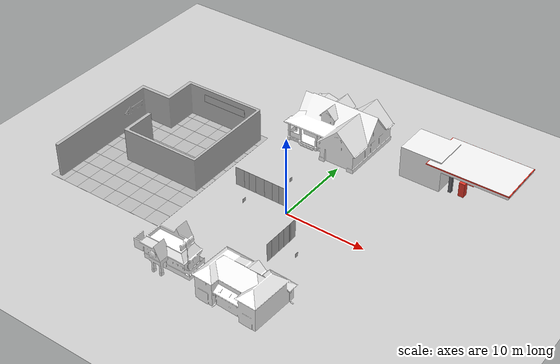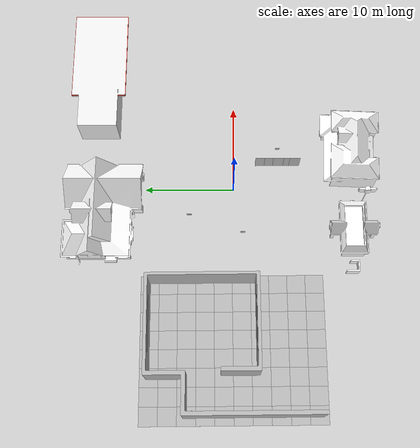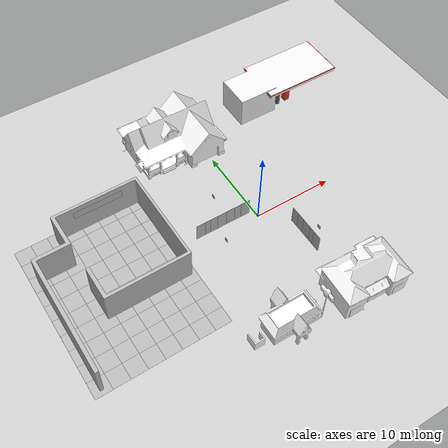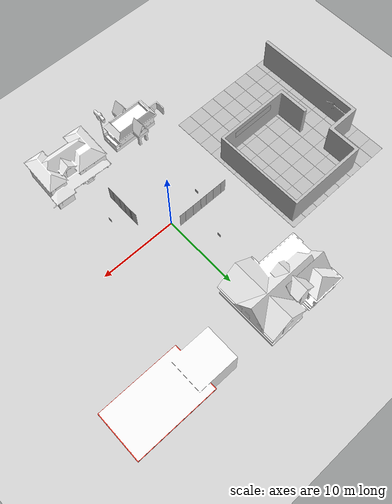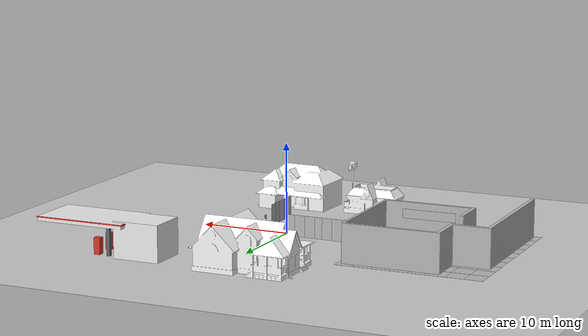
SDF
<sdf version="1.5">
 <world name="default">
  <spherical_coordinates>
   <latitude_deg>48.8789</latitude_deg>
   <longitude_deg>2.36778</longitude_deg>
   <surface_model>EARTH_WGS84</surface_model>
   <elevation>0</elevation>
   <heading_deg>0</heading_deg>
  </spherical_coordinates>
  <physics name="default_physics" default="0" type="ode">
   <real_time_update_rate>1000</real_time_update_rate>
   <max_step_size>0.001</max_step_size>
   <real_time_factor>1</real_time_factor>
   <max_contacts>20</max_contacts>
   <gravity>0 0 -9.81</gravity>
   <magnetic_field>0 2.1e-05 -4.3e-05</magnetic_field>
   <ode>
    <solver>
     <type>world</type>
     <min_step_size>0.0001</min_step_size>
     <iters>50</iters>
     <precon_iters>0</precon_iters>
     <sor>1.4</sor>
     <use_dynamic_moi_rescaling>1</use_dynamic_moi_rescaling>
    </solver>
    <constraints>
     <cfm>0</cfm>
     <erp>0.2</erp>
     <contact_max_correcting_vel>100</contact_max_correcting_vel>
     <contact_surface_layer>0.001</contact_surface_layer>
    </constraints>
   </ode>
  </physics>
  <atmosphere type="adiabatic">
   <temperature>298.15</temperature>
   <pressure>101325</pressure>
   <temperature_gradient>-0.0065</temperature_gradient>
  </atmosphere>
  <plugin name="fwman" filename="libsphinx_fwman.so">
   <spawn_point name="home"><pose>1 -1 0.1 0 0 0</pose></spawn_point>
   <drone name="bebop2" firmware="/home/santiago/Descargas/ardrone3-milos_pc.ext2.zip" hardware="milosboard">
    <machine_params low_gpu="1" with_front_cam="0" with_hd_battery="0" with_flir="0" flir_pos="tilted"/>
    <pose>home</pose>
    <interface>eth1</interface>
   </drone>
  </plugin>
  <light name="sun" type="directional">
   <pose>0 0 10 0 -0 0</pose>
   <diffuse>0.8 0.8 0.8 1</diffuse>
   <specular>0.2 0.2 0.2 1</specular>
   <attenuation>
    <range>1000</range>
    <constant>0.9</constant>
    <linear>0.01</linear>
    <quadratic>0.001</quadratic>
   </attenuation>
   <direction>-0.5 0.1 -0.9</direction>
  </light>
  <model name="ground_plane">
   <static>1</static>
   <link name="link">
    <collision name="collision">
     <geometry><plane><normal>0 0 1</normal><size>100 100</size></plane></geometry>
     <surface>
      <contact><collide_bitmask>65535</collide_bitmask></contact>
      <friction><ode><mu>100</mu><mu2>50</mu2></ode></friction>
     </surface>
    </collision>
    <visual name="visual">
     <cast_shadows>0</cast_shadows>
     <geometry><plane><normal>0 0 1</normal><size>100 100</size></plane></geometry>
     <material>
      <script><uri>file://media/materials/scripts/gazebo.material</uri><name>Gazebo/Grey</name></script>
     </material>
    </visual>
   </link>
  </model>
  <scene><ambient>0.4 0.4 0.4 1</ambient><background>0.7 0.7 0.7 1</background><shadows>0</shadows></scene>
  <model name="Gas Station">
   <static>1</static>
   <link name="link">
    <collision name="collision">
     <geometry><mesh><uri>model://gas_station/meshes/gas_station.dae</uri></mesh></geometry>
    </collision>
    <visual name="visual">
     <geometry><mesh><uri>model://gas_station/meshes/gas_station.dae</uri></mesh></geometry>
     <material>
      <script>
       <uri>model://gas_station/materials/scripts</uri>
       <uri>model://gas_station/materials/textures</uri>
       <name>GasStation/Diffuse</name>
      </script>
      <shader type="normal_map_object_space"><normal_map>GasStation_Normal.png</normal_map></shader>
     </material>
    </visual>
   </link>
   <pose>12.7227 15.3433 0 0 -0 0</pose>
  </model>
  <model name="House 1">
   <static>1</static>
   <link name="link">
    <collision name="collision">
     <geometry><mesh><uri>model://house_1/meshes/house_1.dae</uri></mesh></geometry>
    </collision>
    <visual name="visual">
     <geometry><mesh><uri>model://house_1/meshes/house_1.dae</uri></mesh></geometry>
     <material>
      <script>
       <uri>model://house_1/materials/scripts</uri>
       <uri>model://house_1/materials/textures</uri>
       <name>House_1/Diffuse</name>
      </script>
      <shader type="normal_map_object_space"><normal_map>House_1_Normal.png</normal_map></shader>
     </material>
    </visual>
   </link>
   <pose>-2.9954 14.6952 0 0 -0 0</pose>
  </model>
  <model name="House 2">
   <static>1</static>
   <link name="link">
    <collision name="collision">
     <geometry><mesh><uri>model://house_2/meshes/house_2.dae</uri></mesh></geometry>
    </collision>
    <visual name="visual">
     <geometry><mesh><uri>model://house_2/meshes/house_2.dae</uri></mesh></geometry>
     <material>
      <script>
       <uri>model://house_2/materials/scripts</uri>
       <uri>model://house_2/materials/textures</uri>
       <uri>model://house_1/materials/textures</uri>
       <name>House_2/Diffuse</name>
      </script>
      <shader type="normal_map_object_space">
       <normal_map>model://house_1/materials/textures/House_1_Normal.png</normal_map>
      </shader>
     </material>
    </visual>
   </link>
   <pose>3.72861 -13.5092 0 0 0 -0.041899</pose>
  </model>
  <model name="Starting Pen">
   <static>1</static>
   <link name="link">
    <collision name="wall_01">
     <pose>-0 0 2.14 0 -0 0</pose>
     <geometry><box><size>12.15 0.31 4.28</size></box></geometry>
    </collision>
    <collision name="wall_02">
     <pose>-5.28 14.3205 2.14 0 -0 0</pose>
     <geometry><box><size>14.8 0.46 4.28</size></box></geometry>
    </collision>
    <collision name="wall_03">
     <pose>-5.91 5 2.14 0 -0 0</pose>
     <geometry><box><size>0.385 10.3 4.28</size></box></geometry>
    </collision>
    <collision name="wall_04">
     <pose>5.91 5.161 2.14 0 -0 0</pose>
     <geometry><box><size>0.385 10.66 4.28</size></box></geometry>
    </collision>
    <collision name="wall_05">
     <pose>3.9 10.285 2.14 0 -0 0</pose>
     <geometry><box><size>4.38 0.45 4.28</size></box></geometry>
    </collision>
    <collision name="wall_06">
     <pose>-4 9.95 2.14 0 -0 0</pose>
     <geometry><box><size>4.25 0.45 4.28</size></box></geometry>
    </collision>
    <collision name="wall_07">
     <pose>1.94 12.3 2.14 0 -0 0</pose>
     <geometry><box><size>0.45 4.5 4.28</size></box></geometry>
    </collision>
    <collision name="wall_arrow">
     <pose>-0.232 14.03 2.46 0 -0 0</pose>
     <geometry><box><size>3.33 0.12 1.16</size></box></geometry>
    </collision>
    <collision name="collision_floor">
     <pose>-3.21 7.355 0 0 -0 0</pose>
     <geometry><box><size>20 16 0.01</size></box></geometry>
     <surface><friction><ode><mu>100</mu><mu2>50</mu2></ode></friction></surface>
    </collision>
    <visual name="visual_osrf">
     <pose>-5.74 4.99 3 0 -0 0</pose>
     <geometry><box><size>0.01 6 1</size></box></geometry>
     <material>
      <script>
       <uri>model://starting_pen/materials/scripts</uri>
       <uri>model://starting_pen/materials/textures</uri>
       <name>StartingPen/OSRF</name>
      </script>
     </material>
    </visual>
    <visual name="visual_osrf_2">
     <pose>5.74 4.99 3 0 -0 0</pose>
     <geometry><box><size>0.01 6 1</size></box></geometry>
     <material>
      <script>
       <uri>model://starting_pen/materials/scripts</uri>
       <uri>model://starting_pen/materials/textures</uri>
       <name>StartingPen/OSRF</name>
      </script>
     </material>
    </visual>
    <visual name="visual">
     <geometry><mesh><uri>model://starting_pen/meshes/starting_pen.dae</uri></mesh></geometry>
    </visual>
    <visual name="visual_floor_0">
     <pose>-12.21 0.35 0 0 -0 0</pose>
     <geometry><box><size>2 2 0.01</size></box></geometry>
     <material>
      <script>
       <uri>model://starting_pen/materials/scripts</uri>
       <uri>model://starting_pen/materials/textures</uri>
       <name>StartingPen/Floor</name>
      </script>
     </material>
    </visual>
    <visual name="visual_floor_1">
     <pose>-10.21 0.35 0 0 -0 0</pose>
     <geometry><box><size>2 2 0.01</size></box></geometry>
     <material>
      <script>
       <uri>model://starting_pen/materials/scripts</uri>
       <uri>model://starting_pen/materials/textures</uri>
       <name>StartingPen/Floor</name>
      </script>
     </material>
    </visual>
    <visual name="visual_floor_2">
     <pose>-8.21 0.35 0 0 -0 0</pose>
     <geometry><box><size>2 2 0.01</size></box></geometry>
     <material>
      <script>
       <uri>model://starting_pen/materials/scripts</uri>
       <uri>model://starting_pen/materials/textures</uri>
       <name>StartingPen/Floor</name>
      </script>
     </material>
    </visual>
    <visual name="visual_floor_3">
     <pose>-6.21 0.35 0 0 -0 0</pose>
     <geometry><box><size>2 2 0.01</size></box></geometry>
     <material>
      <script>
       <uri>model://starting_pen/materials/scripts</uri>
       <uri>model://starting_pen/materials/textures</uri>
       <name>StartingPen/Floor</name>
      </script>
     </material>
    </visual>
    <visual name="visual_floor_4">
     <pose>-4.21 0.35 0 0 -0 0</pose>
     <geometry><box><size>2 2 0.01</size></box></geometry>
     <material>
      <script>
       <uri>model://starting_pen/materials/scripts</uri>
       <uri>model://starting_pen/materials/textures</uri>
       <name>StartingPen/Floor</name>
      </script>
     </material>
    </visual>
    <visual name="visual_floor_5">
     <pose>-2.21 0.35 0 0 -0 0</pose>
     <geometry><box><size>2 2 0.01</size></box></geometry>
     <material>
      <script>
       <uri>model://starting_pen/materials/scripts</uri>
       <uri>model://starting_pen/materials/textures</uri>
       <name>StartingPen/Floor</name>
      </script>
     </material>
    </visual>
    <visual name="visual_floor_6">
     <pose>-0.21 0.35 0 0 -0 0</pose>
     <geometry><box><size>2 2 0.01</size></box></geometry>
     <material>
      <script>
       <uri>model://starting_pen/materials/scripts</uri>
       <uri>model://starting_pen/materials/textures</uri>
       <name>StartingPen/Floor</name>
      </script>
     </material>
    </visual>
    <visual name="visual_floor_7">
     <pose>1.79 0.35 0 0 -0 1.5707</pose>
     <geometry><box><size>2 2 0.01</size></box></geometry>
     <material>
      <script>
       <uri>model://starting_pen/materials/scripts</uri>
       <uri>model://starting_pen/materials/textures</uri>
       <name>StartingPen/FloorStripped</name>
      </script>
     </material>
    </visual>
    <visual name="visual_floor_8">
     <pose>3.79 0.35 0 0 -0 0</pose>
     <geometry><box><size>2 2 0.01</size></box></geometry>
     <material>
      <script>
       <uri>model://starting_pen/materials/scripts</uri>
       <uri>model://starting_pen/materials/textures</uri>
       <name>StartingPen/Floor</name>
      </script>
     </material>
    </visual>
    <visual name="visual_floor_9">
     <pose>5.79 0.35 0 0 -0 0</pose>
     <geometry><box><size>2 2 0.01</size></box></geometry>
     <material>
      <script>
       <uri>model://starting_pen/materials/scripts</uri>
       <uri>model://starting_pen/materials/textures</uri>
       <name>StartingPen/Floor</name>
      </script>
     </material>
    </visual>
    <visual name="visual_floor_10">
     <pose>-12.21 2.35 0 0 -0 1.5707</pose>
     <geometry><box><size>2 2 0.01</size></box></geometry>
     <material>
      <script>
       <uri>model://starting_pen/materials/scripts</uri>
       <uri>model://starting_pen/materials/textures</uri>
       <name>StartingPen/FloorStripped</name>
      </script>
     </material>
    </visual>
    <visual name="visual_floor_11">
     <pose>-10.21 2.35 0 0 -0 0</pose>
     <geometry><box><size>2 2 0.01</size></box></geometry>
     <material>
      <script>
       <uri>model://starting_pen/materials/scripts</uri>
       <uri>model://starting_pen/materials/textures</uri>
       <name>StartingPen/Floor</name>
      </script>
     </material>
    </visual>
    <visual name="visual_floor_12">
     <pose>-8.21 2.35 0 0 -0 0</pose>
     <geometry><box><size>2 2 0.01</size></box></geometry>
     <material>
      <script>
       <uri>model://starting_pen/materials/scripts</uri>
       <uri>model://starting_pen/materials/textures</uri>
       <name>StartingPen/Floor</name>
      </script>
     </material>
    </visual>
    <visual name="visual_floor_13">
     <pose>-6.21 2.35 0 0 -0 0</pose>
     <geometry><box><size>2 2 0.01</size></box></geometry>
     <material>
      <script>
       <uri>model://starting_pen/materials/scripts</uri>
       <uri>model://starting_pen/materials/textures</uri>
       <name>StartingPen/Floor</name>
      </script>
     </material>
    </visual>
    <visual name="visual_floor_14">
     <pose>-4.21 2.35 0 0 -0 0</pose>
     <geometry><box><size>2 2 0.01</size></box></geometry>
     <material>
      <script>
       <uri>model://starting_pen/materials/scripts</uri>
       <uri>model://starting_pen/materials/textures</uri>
       <name>StartingPen/Floor</name>
      </script>
     </material>
    </visual>
    <visual name="visual_floor_15">
     <pose>-2.21 2.35 0 0 -0 0</pose>
     <geometry><box><size>2 2 0.01</size></box></geometry>
     <material>
      <script>
       <uri>model://starting_pen/materials/scripts</uri>
       <uri>model://starting_pen/materials/textures</uri>
       <name>StartingPen/Floor</name>
      </script>
     </material>
    </visual>
    <visual name="visual_floor_16">
     <pose>-0.21 2.35 0 0 -0 1.5707</pose>
     <geometry><box><size>2 2 0.01</size></box></geometry>
     <material>
      <script>
       <uri>model://starting_pen/materials/scripts</uri>
       <uri>model://starting_pen/materials/textures</uri>
       <name>StartingPen/FloorStripped</name>
      </script>
     </material>
    </visual>
    <visual name="visual_floor_17">
     <pose>1.79 2.35 0 0 -0 1.5707</pose>
     <geometry><box><size>2 2 0.01</size></box></geometry>
     <material>
      <script>
       <uri>model://starting_pen/materials/scripts</uri>
       <uri>model://starting_pen/materials/textures</uri>
       <name>StartingPen/Floor</name>
      </script>
     </material>
    </visual>
    <visual name="visual_floor_18">
     <pose>3.79 2.35 0 0 -0 0</pose>
     <geometry><box><size>2 2 0.01</size></box></geometry>
     <material>
      <script>
       <uri>model://starting_pen/materials/scripts</uri>
       <uri>model://starting_pen/materials/textures</uri>
       <name>StartingPen/Floor</name>
      </script>
     </material>
    </visual>
    <visual name="visual_floor_19">
     <pose>5.79 2.35 0 0 -0 0</pose>
     <geometry><box><size>2 2 0.01</size></box></geometry>
     <material>
      <script>
       <uri>model://starting_pen/materials/scripts</uri>
       <uri>model://starting_pen/materials/textures</uri>
       <name>StartingPen/Floor</name>
      </script>
     </material>
    </visual>
    <visual name="visual_floor_20">
     <pose>-12.21 4.35 0 0 -0 0</pose>
     <geometry><box><size>2 2 0.01</size></box></geometry>
     <material>
      <script>
       <uri>model://starting_pen/materials/scripts</uri>
       <uri>model://starting_pen/materials/textures</uri>
       <name>StartingPen/Floor</name>
      </script>
     </material>
    </visual>
    <visual name="visual_floor_21">
     <pose>-10.21 4.35 0 0 -0 0</pose>
     <geometry><box><size>2 2 0.01</size></box></geometry>
     <material>
      <script>
       <uri>model://starting_pen/materials/scripts</uri>
       <uri>model://starting_pen/materials/textures</uri>
       <name>StartingPen/Floor</name>
      </script>
     </material>
    </visual>
    <visual name="visual_floor_22">
     <pose>-8.21 4.35 0 0 -0 1.5707</pose>
     <geometry><box><size>2 2 0.01</size></box></geometry>
     <material>
      <script>
       <uri>model://starting_pen/materials/scripts</uri>
       <uri>model://starting_pen/materials/textures</uri>
       <name>StartingPen/FloorStripped</name>
      </script>
     </material>
    </visual>
    <visual name="visual_floor_23">
     <pose>-6.21 4.35 0 0 -0 0</pose>
     <geometry><box><size>2 2 0.01</size></box></geometry>
     <material>
      <script>
       <uri>model://starting_pen/materials/scripts</uri>
       <uri>model://starting_pen/materials/textures</uri>
       <name>StartingPen/Floor</name>
      </script>
     </material>
    </visual>
    <visual name="visual_floor_24">
     <pose>-4.21 4.35 0 0 -0 0</pose>
     <geometry><box><size>2 2 0.01</size></box></geometry>
     <material>
      <script>
       <uri>model://starting_pen/materials/scripts</uri>
       <uri>model://starting_pen/materials/textures</uri>
       <name>StartingPen/Floor</name>
      </script>
     </material>
    </visual>
    <visual name="visual_floor_25">
     <pose>-2.21 4.35 0 0 -0 0</pose>
     <geometry><box><size>2 2 0.01</size></box></geometry>
     <material>
      <script>
       <uri>model://starting_pen/materials/scripts</uri>
       <uri>model://starting_pen/materials/textures</uri>
       <name>StartingPen/Floor</name>
      </script>
     </material>
    </visual>
    <visual name="visual_floor_26">
     <pose>-0.21 4.35 0 0 -0 0</pose>
     <geometry><box><size>2 2 0.01</size></box></geometry>
     <material>
      <script>
       <uri>model://starting_pen/materials/scripts</uri>
       <uri>model://starting_pen/materials/textures</uri>
       <name>StartingPen/Floor</name>
      </script>
     </material>
    </visual>
    <visual name="visual_floor_27">
     <pose>1.79 4.35 0 0 -0 0</pose>
     <geometry><box><size>2 2 0.01</size></box></geometry>
     <material>
      <script>
       <uri>model://starting_pen/materials/scripts</uri>
       <uri>model://starting_pen/materials/textures</uri>
       <name>StartingPen/Floor</name>
      </script>
     </material>
    </visual>
    <visual name="visual_floor_28">
     <pose>3.79 4.35 0 0 -0 0</pose>
     <geometry><box><size>2 2 0.01</size></box></geometry>
     <material>
      <script>
       <uri>model://starting_pen/materials/scripts</uri>
       <uri>model://starting_pen/materials/textures</uri>
       <name>StartingPen/Floor</name>
      </script>
     </material>
    </visual>
    <visual name="visual_floor_29">
     <pose>5.79 4.35 0 0 -0 1.5707</pose>
     <geometry><box><size>2 2 0.01</size></box></geometry>
     <material>
      <script>
       <uri>model://starting_pen/materials/scripts</uri>
       <uri>model://starting_pen/materials/textures</uri>
       <name>StartingPen/FloorStripped</name>
      </script>
     </material>
    </visual>
    <visual name="visual_floor_30">
     <pose>-12.21 6.35 0 0 -0 0</pose>
     <geometry><box><size>2 2 0.01</size></box></geometry>
     <material>
      <script>
       <uri>model://starting_pen/materials/scripts</uri>
       <uri>model://starting_pen/materials/textures</uri>
       <name>StartingPen/Floor</name>
      </script>
     </material>
    </visual>
    <visual name="visual_floor_31">
     <pose>-10.21 6.35 0 0 -0 0</pose>
     <geometry><box><size>2 2 0.01</size></box></geometry>
     <material>
      <script>
       <uri>model://starting_pen/materials/scripts</uri>
       <uri>model://starting_pen/materials/textures</uri>
       <name>StartingPen/Floor</name>
      </script>
     </material>
    </visual>
    <visual name="visual_floor_32">
     <pose>-8.21 6.35 0 0 -0 0</pose>
     <geometry><box><size>2 2 0.01</size></box></geometry>
     <material>
      <script>
       <uri>model://starting_pen/materials/scripts</uri>
       <uri>model://starting_pen/materials/textures</uri>
       <name>StartingPen/Floor</name>
      </script>
     </material>
    </visual>
    <visual name="visual_floor_33">
     <pose>-6.21 6.35 0 0 -0 1.5707</pose>
     <geometry><box><size>2 2 0.01</size></box></geometry>
     <material>
      <script>
       <uri>model://starting_pen/materials/scripts</uri>
       <uri>model://starting_pen/materials/textures</uri>
       <name>StartingPen/FloorStripped</name>
      </script>
     </material>
    </visual>
    <visual name="visual_floor_34">
     <pose>-4.21 6.35 0 0 -0 0</pose>
     <geometry><box><size>2 2 0.01</size></box></geometry>
     <material>
      <script>
       <uri>model://starting_pen/materials/scripts</uri>
       <uri>model://starting_pen/materials/textures</uri>
       <name>StartingPen/Floor</name>
      </script>
     </material>
    </visual>
    <visual name="visual_floor_35">
     <pose>-2.21 6.35 0 0 -0 1.5707</pose>
     <geometry><box><size>2 2 0.01</size></box></geometry>
     <material>
      <script>
       <uri>model://starting_pen/materials/scripts</uri>
       <uri>model://starting_pen/materials/textures</uri>
       <name>StartingPen/FloorStripped</name>
      </script>
     </material>
    </visual>
    <visual name="visual_floor_36">
     <pose>-0.21 6.35 0 0 -0 0</pose>
     <geometry><box><size>2 2 0.01</size></box></geometry>
     <material>
      <script>
       <uri>model://starting_pen/materials/scripts</uri>
       <uri>model://starting_pen/materials/textures</uri>
       <name>StartingPen/Floor</name>
      </script>
     </material>
    </visual>
    <visual name="visual_floor_37">
     <pose>1.79 6.35 0 0 -0 0</pose>
     <geometry><box><size>2 2 0.01</size></box></geometry>
     <material>
      <script>
       <uri>model://starting_pen/materials/scripts</uri>
       <uri>model://starting_pen/materials/textures</uri>
       <name>StartingPen/Floor</name>
      </script>
     </material>
    </visual>
    <visual name="visual_floor_38">
     <pose>3.79 6.35 0 0 -0 0</pose>
     <geometry><box><size>2 2 0.01</size></box></geometry>
     <material>
      <script>
       <uri>model://starting_pen/materials/scripts</uri>
       <uri>model://starting_pen/materials/textures</uri>
       <name>StartingPen/Floor</name>
      </script>
     </material>
    </visual>
    <visual name="visual_floor_39">
     <pose>5.79 6.35 0 0 -0 0</pose>
     <geometry><box><size>2 2 0.01</size></box></geometry>
     <material>
      <script>
       <uri>model://starting_pen/materials/scripts</uri>
       <uri>model://starting_pen/materials/textures</uri>
       <name>StartingPen/Floor</name>
      </script>
     </material>
    </visual>
    <visual name="visual_floor_40">
     <pose>-12.21 8.35 0 0 -0 0</pose>
     <geometry><box><size>2 2 0.01</size></box></geometry>
     <material>
      <script>
       <uri>model://starting_pen/materials/scripts</uri>
       <uri>model://starting_pen/materials/textures</uri>
       <name>StartingPen/Floor</name>
      </script>
     </material>
    </visual>
    <visual name="visual_floor_41">
     <pose>-10.21 8.35 0 0 -0 0</pose>
     <geometry><box><size>2 2 0.01</size></box></geometry>
     <material>
      <script>
       <uri>model://starting_pen/materials/scripts</uri>
       <uri>model://starting_pen/materials/textures</uri>
       <name>StartingPen/Floor</name>
      </script>
     </material>
    </visual>
    <visual name="visual_floor_42">
     <pose>-8.21 8.35 0 0 -0 1.5707</pose>
     <geometry><box><size>2 2 0.01</size></box></geometry>
     <material>
      <script>
       <uri>model://starting_pen/materials/scripts</uri>
       <uri>model://starting_pen/materials/textures</uri>
       <name>StartingPen/FloorStripped</name>
      </script>
     </material>
    </visual>
    <visual name="visual_floor_43">
     <pose>-6.21 8.35 0 0 -0 0</pose>
     <geometry><box><size>2 2 0.01</size></box></geometry>
     <material>
      <script>
       <uri>model://starting_pen/materials/scripts</uri>
       <uri>model://starting_pen/materials/textures</uri>
       <name>StartingPen/Floor</name>
      </script>
     </material>
    </visual>
    <visual name="visual_floor_44">
     <pose>-4.21 8.35 0 0 -0 0</pose>
     <geometry><box><size>2 2 0.01</size></box></geometry>
     <material>
      <script>
       <uri>model://starting_pen/materials/scripts</uri>
       <uri>model://starting_pen/materials/textures</uri>
       <name>StartingPen/Floor</name>
      </script>
     </material>
    </visual>
    <visual name="visual_floor_45">
     <pose>-2.21 8.35 0 0 -0 0</pose>
     <geometry><box><size>2 2 0.01</size></box></geometry>
     <material>
      <script>
       <uri>model://starting_pen/materials/scripts</uri>
       <uri>model://starting_pen/materials/textures</uri>
       <name>StartingPen/Floor</name>
      </script>
     </material>
    </visual>
    <visual name="visual_floor_46">
     <pose>-0.21 8.35 0 0 -0 1.5707</pose>
     <geometry><box><size>2 2 0.01</size></box></geometry>
     <material>
      <script>
       <uri>model://starting_pen/materials/scripts</uri>
       <uri>model://starting_pen/materials/textures</uri>
       <name>StartingPen/FloorStripped</name>
      </script>
     </material>
    </visual>
    <visual name="visual_floor_47">
     <pose>1.79 8.35 0 0 -0 0</pose>
     <geometry><box><size>2 2 0.01</size></box></geometry>
     <material>
      <script>
       <uri>model://starting_pen/materials/scripts</uri>
       <uri>model://starting_pen/materials/textures</uri>
       <name>StartingPen/Floor</name>
      </script>
     </material>
    </visual>
    <visual name="visual_floor_48">
     <pose>3.79 8.35 0 0 -0 0</pose>
     <geometry><box><size>2 2 0.01</size></box></geometry>
     <material>
      <script>
       <uri>model://starting_pen/materials/scripts</uri>
       <uri>model://starting_pen/materials/textures</uri>
       <name>StartingPen/Floor</name>
      </script>
     </material>
    </visual>
    <visual name="visual_floor_49">
     <pose>5.79 8.35 0 0 -0 0</pose>
     <geometry><box><size>2 2 0.01</size></box></geometry>
     <material>
      <script>
       <uri>model://starting_pen/materials/scripts</uri>
       <uri>model://starting_pen/materials/textures</uri>
       <name>StartingPen/Floor</name>
      </script>
     </material>
    </visual>
    <visual name="visual_floor_50">
     <pose>-12.21 10.35 0 0 -0 0</pose>
     <geometry><box><size>2 2 0.01</size></box></geometry>
     <material>
      <script>
       <uri>model://starting_pen/materials/scripts</uri>
       <uri>model://starting_pen/materials/textures</uri>
       <name>StartingPen/Floor</name>
      </script>
     </material>
    </visual>
    <visual name="visual_floor_51">
     <pose>-10.21 10.35 0 0 -0 0</pose>
     <geometry><box><size>2 2 0.01</size></box></geometry>
     <material>
      <script>
       <uri>model://starting_pen/materials/scripts</uri>
       <uri>model://starting_pen/materials/textures</uri>
       <name>StartingPen/Floor</name>
      </script>
     </material>
    </visual>
    <visual name="visual_floor_52">
     <pose>-8.21 10.35 0 0 -0 0</pose>
     <geometry><box><size>2 2 0.01</size></box></geometry>
     <material>
      <script>
       <uri>model://starting_pen/materials/scripts</uri>
       <uri>model://starting_pen/materials/textures</uri>
       <name>StartingPen/Floor</name>
      </script>
     </material>
    </visual>
    <visual name="visual_floor_53">
     <pose>-6.21 10.35 0 0 -0 1.5707</pose>
     <geometry><box><size>2 2 0.01</size></box></geometry>
     <material>
      <script>
       <uri>model://starting_pen/materials/scripts</uri>
       <uri>model://starting_pen/materials/textures</uri>
       <name>StartingPen/FloorStripped</name>
      </script>
     </material>
    </visual>
    <visual name="visual_floor_54">
     <pose>-4.21 10.35 0 0 -0 0</pose>
     <geometry><box><size>2 2 0.01</size></box></geometry>
     <material>
      <script>
       <uri>model://starting_pen/materials/scripts</uri>
       <uri>model://starting_pen/materials/textures</uri>
       <name>StartingPen/Floor</name>
      </script>
     </material>
    </visual>
    <visual name="visual_floor_55">
     <pose>-2.21 10.35 0 0 -0 0</pose>
     <geometry><box><size>2 2 0.01</size></box></geometry>
     <material>
      <script>
       <uri>model://starting_pen/materials/scripts</uri>
       <uri>model://starting_pen/materials/textures</uri>
       <name>StartingPen/Floor</name>
      </script>
     </material>
    </visual>
    <visual name="visual_floor_56">
     <pose>-0.21 10.35 0 0 -0 0</pose>
     <geometry><box><size>2 2 0.01</size></box></geometry>
     <material>
      <script>
       <uri>model://starting_pen/materials/scripts</uri>
       <uri>model://starting_pen/materials/textures</uri>
       <name>StartingPen/Floor</name>
      </script>
     </material>
    </visual>
    <visual name="visual_floor_57">
     <pose>1.79 10.35 0 0 -0 0</pose>
     <geometry><box><size>2 2 0.01</size></box></geometry>
     <material>
      <script>
       <uri>model://starting_pen/materials/scripts</uri>
       <uri>model://starting_pen/materials/textures</uri>
       <name>StartingPen/Floor</name>
      </script>
     </material>
    </visual>
    <visual name="visual_floor_58">
     <pose>3.79 10.35 0 0 -0 0</pose>
     <geometry><box><size>2 2 0.01</size></box></geometry>
     <material>
      <script>
       <uri>model://starting_pen/materials/scripts</uri>
       <uri>model://starting_pen/materials/textures</uri>
       <name>StartingPen/Floor</name>
      </script>
     </material>
    </visual>
    <visual name="visual_floor_59">
     <pose>5.79 10.35 0 0 -0 0</pose>
     <geometry><box><size>2 2 0.01</size></box></geometry>
     <material>
      <script>
       <uri>model://starting_pen/materials/scripts</uri>
       <uri>model://starting_pen/materials/textures</uri>
       <name>StartingPen/Floor</name>
      </script>
     </material>
    </visual>
    <visual name="visual_floor_60">
     <pose>-12.21 12.35 0 0 -0 1.5707</pose>
     <geometry><box><size>2 2 0.01</size></box></geometry>
     <material>
      <script>
       <uri>model://starting_pen/materials/scripts</uri>
       <uri>model://starting_pen/materials/textures</uri>
       <name>StartingPen/FloorStripped</name>
      </script>
     </material>
    </visual>
    <visual name="visual_floor_61">
     <pose>-10.21 12.35 0 0 -0 0</pose>
     <geometry><box><size>2 2 0.01</size></box></geometry>
     <material>
      <script>
       <uri>model://starting_pen/materials/scripts</uri>
       <uri>model://starting_pen/materials/textures</uri>
       <name>StartingPen/Floor</name>
      </script>
     </material>
    </visual>
    <visual name="visual_floor_62">
     <pose>-8.21 12.35 0 0 -0 0</pose>
     <geometry><box><size>2 2 0.01</size></box></geometry>
     <material>
      <script>
       <uri>model://starting_pen/materials/scripts</uri>
       <uri>model://starting_pen/materials/textures</uri>
       <name>StartingPen/Floor</name>
      </script>
     </material>
    </visual>
    <visual name="visual_floor_63">
     <pose>-6.21 12.35 0 0 -0 0</pose>
     <geometry><box><size>2 2 0.01</size></box></geometry>
     <material>
      <script>
       <uri>model://starting_pen/materials/scripts</uri>
       <uri>model://starting_pen/materials/textures</uri>
       <name>StartingPen/Floor</name>
      </script>
     </material>
    </visual>
    <visual name="visual_floor_64">
     <pose>-4.21 12.35 0 0 -0 0</pose>
     <geometry><box><size>2 2 0.01</size></box></geometry>
     <material>
      <script>
       <uri>model://starting_pen/materials/scripts</uri>
       <uri>model://starting_pen/materials/textures</uri>
       <name>StartingPen/Floor</name>
      </script>
     </material>
    </visual>
    <visual name="visual_floor_65">
     <pose>-2.21 12.35 0 0 -0 1.5707</pose>
     <geometry><box><size>2 2 0.01</size></box></geometry>
     <material>
      <script>
       <uri>model://starting_pen/materials/scripts</uri>
       <uri>model://starting_pen/materials/textures</uri>
       <name>StartingPen/FloorStripped</name>
      </script>
     </material>
    </visual>
    <visual name="visual_floor_66">
     <pose>-0.21 12.35 0 0 -0 0</pose>
     <geometry><box><size>2 2 0.01</size></box></geometry>
     <material>
      <script>
       <uri>model://starting_pen/materials/scripts</uri>
       <uri>model://starting_pen/materials/textures</uri>
       <name>StartingPen/Floor</name>
      </script>
     </material>
    </visual>
    <visual name="visual_floor_67">
     <pose>1.79 12.35 0 0 -0 0</pose>
     <geometry><box><size>2 2 0.01</size></box></geometry>
     <material>
      <script>
       <uri>model://starting_pen/materials/scripts</uri>
       <uri>model://starting_pen/materials/textures</uri>
       <name>StartingPen/Floor</name>
      </script>
     </material>
    </visual>
    <visual name="visual_floor_68">
     <pose>3.79 12.35 0 0 -0 0</pose>
     <geometry><box><size>2 2 0.01</size></box></geometry>
     <material>
      <script>
       <uri>model://starting_pen/materials/scripts</uri>
       <uri>model://starting_pen/materials/textures</uri>
       <name>StartingPen/Floor</name>
      </script>
     </material>
    </visual>
    <visual name="visual_floor_69">
     <pose>5.79 12.35 0 0 -0 0</pose>
     <geometry><box><size>2 2 0.01</size></box></geometry>
     <material>
      <script>
       <uri>model://starting_pen/materials/scripts</uri>
       <uri>model://starting_pen/materials/textures</uri>
       <name>StartingPen/Floor</name>
      </script>
     </material>
    </visual>
    <visual name="visual_floor_70">
     <pose>-12.21 14.35 0 0 -0 0</pose>
     <geometry><box><size>2 2 0.01</size></box></geometry>
     <material>
      <script>
       <uri>model://starting_pen/materials/scripts</uri>
       <uri>model://starting_pen/materials/textures</uri>
       <name>StartingPen/Floor</name>
      </script>
     </material>
    </visual>
    <visual name="visual_floor_71">
     <pose>-10.21 14.35 0 0 -0 0</pose>
     <geometry><box><size>2 2 0.01</size></box></geometry>
     <material>
      <script>
       <uri>model://starting_pen/materials/scripts</uri>
       <uri>model://starting_pen/materials/textures</uri>
       <name>StartingPen/Floor</name>
      </script>
     </material>
    </visual>
    <visual name="visual_floor_72">
     <pose>-8.21 14.35 0 0 -0 0</pose>
     <geometry><box><size>2 2 0.01</size></box></geometry>
     <material>
      <script>
       <uri>model://starting_pen/materials/scripts</uri>
       <uri>model://starting_pen/materials/textures</uri>
       <name>StartingPen/Floor</name>
      </script>
     </material>
    </visual>
    <visual name="visual_floor_73">
     <pose>-6.21 14.35 0 0 -0 0</pose>
     <geometry><box><size>2 2 0.01</size></box></geometry>
     <material>
      <script>
       <uri>model://starting_pen/materials/scripts</uri>
       <uri>model://starting_pen/materials/textures</uri>
       <name>StartingPen/Floor</name>
      </script>
     </material>
    </visual>
    <visual name="visual_floor_74">
     <pose>-4.21 14.35 0 0 -0 1.5707</pose>
     <geometry><box><size>2 2 0.01</size></box></geometry>
     <material>
      <script>
       <uri>model://starting_pen/materials/scripts</uri>
       <uri>model://starting_pen/materials/textures</uri>
       <name>StartingPen/FloorStripped</name>
      </script>
     </material>
    </visual>
    <visual name="visual_floor_75">
     <pose>-2.21 14.35 0 0 -0 1.5707</pose>
     <geometry><box><size>2 2 0.01</size></box></geometry>
     <material>
      <script>
       <uri>model://starting_pen/materials/scripts</uri>
       <uri>model://starting_pen/materials/textures</uri>
       <name>StartingPen/Floor</name>
      </script>
     </material>
    </visual>
    <visual name="visual_floor_76">
     <pose>-0.21 14.35 0 0 -0 0</pose>
     <geometry><box><size>2 2 0.01</size></box></geometry>
     <material>
      <script>
       <uri>model://starting_pen/materials/scripts</uri>
       <uri>model://starting_pen/materials/textures</uri>
       <name>StartingPen/Floor</name>
      </script>
     </material>
    </visual>
    <visual name="visual_floor_77">
     <pose>1.79 14.35 0 0 -0 0</pose>
     <geometry><box><size>2 2 0.01</size></box></geometry>
     <material>
      <script>
       <uri>model://starting_pen/materials/scripts</uri>
       <uri>model://starting_pen/materials/textures</uri>
       <name>StartingPen/Floor</name>
      </script>
     </material>
    </visual>
    <visual name="visual_floor_78">
     <pose>3.79 14.35 0 0 -0 0</pose>
     <geometry><box><size>2 2 0.01</size></box></geometry>
     <material>
      <script>
       <uri>model://starting_pen/materials/scripts</uri>
       <uri>model://starting_pen/materials/textures</uri>
       <name>StartingPen/FloorStripped</name>
      </script>
     </material>
    </visual>
    <visual name="visual_floor_79">
     <pose>5.79 14.35 0 0 -0 0</pose>
     <geometry><box><size>2 2 0.01</size></box></geometry>
     <material>
      <script>
       <uri>model://starting_pen/materials/scripts</uri>
       <uri>model://starting_pen/materials/textures</uri>
       <name>StartingPen/Floor</name>
      </script>
     </material>
    </visual>
   </link>
   <pose>-10.6988 3.39504 0 0 -0 1.58155</pose>
  </model>
  <model name="gate_number_1">
   <pose>-5.00003 -1.02936 0.25 0 -0 0</pose>
   <static>1</static>
   <link name="link">
    <collision name="collision"><geometry><box><size>0.01 0.5 0.5</size></box></geometry></collision>
    <visual name="visual">
     <geometry><mesh><uri>model://gate_number_1/meshes/gate_number_1.dae</uri></mesh></geometry>
    </visual>
   </link>
  </model>
  <model name="gate_number_2">
   <pose>5.00527 -5.0753 0.25 0 -0 0</pose>
   <static>1</static>
   <link name="link">
    <collision name="collision"><geometry><box><size>0.01 0.5 0.5</size></box></geometry></collision>
    <visual name="visual">
     <geometry><mesh><uri>model://gate_number_2/meshes/gate_number_2.dae</uri></mesh></geometry>
    </visual>
   </link>
  </model>
  <model name="gate_number_3">
   <pose>-2.98571 4.99804 0.25 0 -0 0</pose>
   <static>1</static>
   <link name="link">
    <collision name="collision"><geometry><box><size>0.01 0.5 0.5</size></box></geometry></collision>
    <visual name="visual">
     <geometry><mesh><uri>model://gate_number_3/meshes/gate_number_3.dae</uri></mesh></geometry>
    </visual>
   </link>
  </model>
  <model name="Fast Food">
   <static>1</static>
   <link name="link">
    <pose>0 0 1.57966 0 -0 0</pose>
    <collision name="collision">
     <geometry><mesh><uri>model://fast_food/meshes/fast_food.dae</uri></mesh></geometry>
    </collision>
    <visual name="visual">
     <geometry><mesh><uri>model://fast_food/meshes/fast_food.dae</uri></mesh></geometry>
     <material>
      <script>
       <uri>model://fast_food/materials/scripts</uri>
       <uri>model://fast_food/materials/textures</uri>
       <name>FastFood/Diffuse</name>
      </script>
      <shader type="normal_map_object_space"><normal_map>FastFood_Normal.png</normal_map></shader>
     </material>
    </visual>
   </link>
   <pose>-5.02696 -13.1685 0 0 -0 0</pose>
  </model>
  <model name="nist_maze_wall_240_clone_clone">
   <static>1</static>
   <link name="nist__maze_wall_240_link">
    <collision name="collision">
     <geometry>
      <mesh><uri>model://nist_maze_wall_240/meshes/nist_maze_wall_240.dae</uri><scale>1 1 1</scale></mesh>
     </geometry>
    </collision>
    <visual name="visual">
     <geometry>
      <mesh><uri>model://nist_maze_wall_240/meshes/nist_maze_wall_240.dae</uri><scale>1 1 1</scale></mesh>
     </geometry>
    </visual>
   </link>
   <pose>3.62048 -4.0005 0 0 -0 1.57</pose>
  </model>
  <model name="nist_maze_wall_240_clone_clone_clone">
   <static>1</static>
   <link name="nist__maze_wall_240_link">
    <collision name="collision">
     <geometry>
      <mesh><uri>model://nist_maze_wall_240/meshes/nist_maze_wall_240.dae</uri><scale>1 1 1</scale></mesh>
     </geometry>
    </collision>
    <visual name="visual">
     <geometry>
      <mesh><uri>model://nist_maze_wall_240/meshes/nist_maze_wall_240.dae</uri><scale>1 1 1</scale></mesh>
     </geometry>
    </visual>
   </link>
   <pose>3.61358 -5.08249 0 0 -0 1.57</pose>
  </model>
  <model name="nist_maze_wall_240_clone_clone_clone_clone">
   <static>1</static>
   <link name="nist__maze_wall_240_link">
    <collision name="collision">
     <geometry>
      <mesh><uri>model://nist_maze_wall_240/meshes/nist_maze_wall_240.dae</uri><scale>1 1 1</scale></mesh>
     </geometry>
    </collision>
    <visual name="visual">
     <geometry>
      <mesh><uri>model://nist_maze_wall_240/meshes/nist_maze_wall_240.dae</uri><scale>1 1 1</scale></mesh>
     </geometry>
    </visual>
   </link>
   <pose>3.61451 -6.09831 0 0 -0 1.57</pose>
  </model>
  <model name="nist_maze_wall_240_clone_clone_clone_clone_clone">
   <static>1</static>
   <link name="nist__maze_wall_240_link">
    <collision name="collision">
     <geometry>
      <mesh><uri>model://nist_maze_wall_240/meshes/nist_maze_wall_240.dae</uri><scale>1 1 1</scale></mesh>
     </geometry>
    </collision>
    <visual name="visual">
     <geometry>
      <mesh><uri>model://nist_maze_wall_240/meshes/nist_maze_wall_240.dae</uri><scale>1 1 1</scale></mesh>
     </geometry>
    </visual>
   </link>
   <pose>3.61171 -6.92533 0 0 -0 1.57</pose>
  </model>
  <model name="nist_maze_wall_240_clone_clone_clone_0">
   <static>1</static>
   <link name="nist__maze_wall_240_link">
    <collision name="collision">
     <geometry>
      <mesh><uri>model://nist_maze_wall_240/meshes/nist_maze_wall_240.dae</uri><scale>1 1 1</scale></mesh>
     </geometry>
    </collision>
    <visual name="visual">
     <geometry>
      <mesh><uri>model://nist_maze_wall_240/meshes/nist_maze_wall_240.dae</uri><scale>1 1 1</scale></mesh>
     </geometry>
    </visual>
   </link>
   <pose>3.61253 -3.06668 0 0 -0 1.58972</pose>
  </model>
  <model name="nist_maze_wall_240_clone_clone_clone_0_clone_clone_0_clone">
   <static>1</static>
   <link name="nist__maze_wall_240_link">
    <collision name="collision">
     <geometry>
      <mesh><uri>model://nist_maze_wall_240/meshes/nist_maze_wall_240.dae</uri><scale>1 1 1</scale></mesh>
     </geometry>
    </collision>
    <visual name="visual">
     <geometry>
      <mesh><uri>model://nist_maze_wall_240/meshes/nist_maze_wall_240.dae</uri><scale>1 1 1</scale></mesh>
     </geometry>
    </visual>
   </link>
   <pose>-1.18261 1.58767 0 0 0 -3.14136</pose>
  </model>
  <model name="nist_maze_wall_240_clone_clone_clone_0_clone_clone_0_clone_clone">
   <static>1</static>
   <link name="nist__maze_wall_240_link">
    <collision name="collision">
     <geometry>
      <mesh><uri>model://nist_maze_wall_240/meshes/nist_maze_wall_240.dae</uri><scale>1 1 1</scale></mesh>
     </geometry>
    </collision>
    <visual name="visual">
     <geometry>
      <mesh><uri>model://nist_maze_wall_240/meshes/nist_maze_wall_240.dae</uri><scale>1 1 1</scale></mesh>
     </geometry>
    </visual>
   </link>
   <pose>-2.02546 1.58852 0 0 0 -3.14136</pose>
  </model>
  <model name="nist_maze_wall_240_clone_clone_clone_0_clone_clone_0_clone_clone_0">
   <static>1</static>
   <link name="nist__maze_wall_240_link">
    <collision name="collision">
     <geometry>
      <mesh><uri>model://nist_maze_wall_240/meshes/nist_maze_wall_240.dae</uri><scale>1 1 1</scale></mesh>
     </geometry>
    </collision>
    <visual name="visual">
     <geometry>
      <mesh><uri>model://nist_maze_wall_240/meshes/nist_maze_wall_240.dae</uri><scale>1 1 1</scale></mesh>
     </geometry>
    </visual>
   </link>
   <pose>-3.22465 1.59543 0 0 0 -3.14136</pose>
  </model>
  <model name="nist_maze_wall_240_clone_clone_clone_0_clone_clone_0_clone_clone_1">
   <static>1</static>
   <link name="nist__maze_wall_240_link">
    <collision name="collision">
     <geometry>
      <mesh><uri>model://nist_maze_wall_240/meshes/nist_maze_wall_240.dae</uri><scale>1 1 1</scale></mesh>
     </geometry>
    </collision>
    <visual name="visual">
     <geometry>
      <mesh><uri>model://nist_maze_wall_240/meshes/nist_maze_wall_240.dae</uri><scale>1 1 1</scale></mesh>
     </geometry>
    </visual>
   </link>
   <pose>-4.32405 1.58968 0 0 0 -3.14136</pose>
  </model>
  <model name="nist_maze_wall_240_clone_clone_clone_0_clone_clone_0_clone_clone_2">
   <static>1</static>
   <link name="nist__maze_wall_240_link">
    <collision name="collision">
     <geometry>
      <mesh><uri>model://nist_maze_wall_240/meshes/nist_maze_wall_240.dae</uri><scale>1 1 1</scale></mesh>
     </geometry>
    </collision>
    <visual name="visual">
     <geometry>
      <mesh><uri>model://nist_maze_wall_240/meshes/nist_maze_wall_240.dae</uri><scale>1 1 1</scale></mesh>
     </geometry>
    </visual>
   </link>
   <pose>-5.25002 1.59107 0 0 0 -3.14136</pose>
  </model>
  <model name="nist_maze_wall_240_clone_clone_clone_0_clone_clone_0_clone_clone_3">
   <static>1</static>
   <link name="nist__maze_wall_240_link">
    <collision name="collision">
     <geometry>
      <mesh><uri>model://nist_maze_wall_240/meshes/nist_maze_wall_240.dae</uri><scale>1 1 1</scale></mesh>
     </geometry>
    </collision>
    <visual name="visual">
     <geometry>
      <mesh><uri>model://nist_maze_wall_240/meshes/nist_maze_wall_240.dae</uri><scale>1 1 1</scale></mesh>
     </geometry>
    </visual>
   </link>
   <pose>-6.40001 1.59279 0 0 0 -3.14136</pose>
  </model>
  <model name="nist_maze_wall_240_clone_clone_clone_0_clone_clone_0_clone_clone_4">
   <static>1</static>
   <link name="nist__maze_wall_240_link">
    <collision name="collision">
     <geometry>
      <mesh><uri>model://nist_maze_wall_240/meshes/nist_maze_wall_240.dae</uri><scale>1 1 1</scale></mesh>
     </geometry>
    </collision>
    <visual name="visual">
     <geometry>
      <mesh><uri>model://nist_maze_wall_240/meshes/nist_maze_wall_240.dae</uri><scale>1 1 1</scale></mesh>
     </geometry>
    </visual>
   </link>
   <pose>-7.12006 1.58768 0 0 0 -3.14136</pose>
  </model>
 </world>
</sdf>
